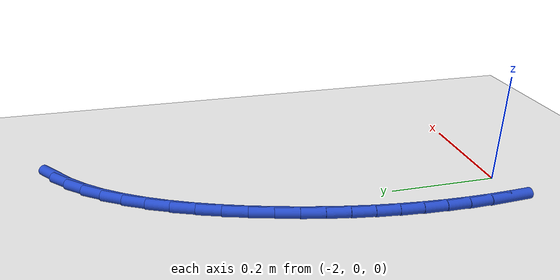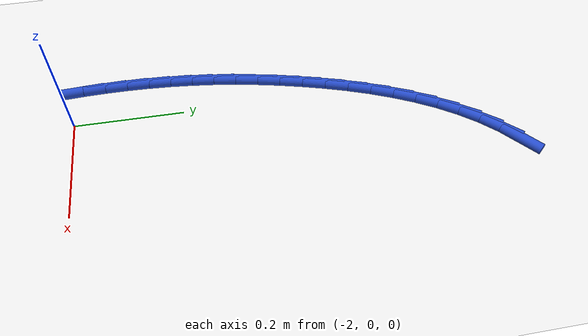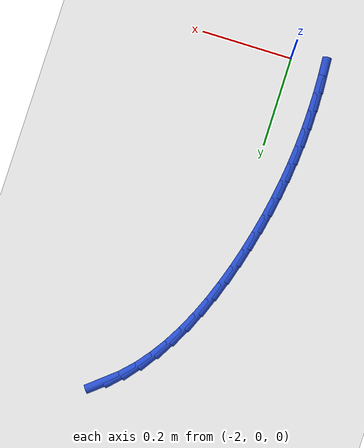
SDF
<sdf version="1.6">
 <world name="default">
  <model name="ground_plane">
   <static>1</static>
   <link name="link">
    <collision name="collision">
     <geometry><plane><normal>0 0 1</normal><size>100 100</size></plane></geometry>
     <surface><friction><ode><mu>100</mu><mu2>50</mu2></ode></friction></surface>
    </collision>
    <visual name="visual">
     <cast_shadows>0</cast_shadows>
     <geometry><plane><normal>0 0 1</normal><size>100 100</size></plane></geometry>
     <material>
      <script><uri>file://media/materials/scripts/gazebo.material</uri><name>Gazebo/WhiteGlow</name></script>
     </material>
    </visual>
   </link>
  </model>
  <model name="line">
   <link name="link_60">
    <pose>-1.8231667165648455 0.7911492960577742 0.01 0 1.57 0.6890913459508331</pose>
    <collision name="collision">
     <geometry><cylinder><radius>0.01</radius><length>0.08</length></cylinder></geometry>
    </collision>
    <visual name="visual">
     <material>
      <script><name>Gazebo/Blue</name><uri>file://media/materials/scripts/gazebo.material</uri></script>
     </material>
     <geometry><cylinder><radius>0.01</radius><length>0.08</length></cylinder></geometry>
    </visual>
   </link>
   <link name="link_61">
    <pose>-1.853980158669267 0.7657648854449245 0.01 0 1.57 0.7975878850034774</pose>
    <collision name="collision">
     <geometry><cylinder><radius>0.01</radius><length>0.08</length></cylinder></geometry>
    </collision>
    <visual name="visual">
     <material>
      <script><name>Gazebo/Blue</name><uri>file://media/materials/scripts/gazebo.material</uri></script>
     </material>
     <geometry><cylinder><radius>0.01</radius><length>0.08</length></cylinder></geometry>
    </visual>
   </link>
   <link name="link_62">
    <pose>-1.882228727913692 0.7368190983863492 0.01 0 1.57 0.893323602333009</pose>
    <collision name="collision">
     <geometry><cylinder><radius>0.01</radius><length>0.08</length></cylinder></geometry>
    </collision>
    <visual name="visual">
     <material>
      <script><name>Gazebo/Blue</name><uri>file://media/materials/scripts/gazebo.material</uri></script>
     </material>
     <geometry><cylinder><radius>0.01</radius><length>0.08</length></cylinder></geometry>
    </visual>
   </link>
   <link name="link_63">
    <pose>-1.908036956387296 0.7047388609808019 0.01 0 1.57 0.9768331360070919</pose>
    <collision name="collision">
     <geometry><cylinder><radius>0.01</radius><length>0.08</length></cylinder></geometry>
    </collision>
    <visual name="visual">
     <material>
      <script><name>Gazebo/Blue</name><uri>file://media/materials/scripts/gazebo.material</uri></script>
     </material>
     <geometry><cylinder><radius>0.01</radius><length>0.08</length></cylinder></geometry>
    </visual>
   </link>
   <link name="link_64">
    <pose>-1.9315294298668784 0.6699512172193091 0.01 0 1.57 1.0492215812812835</pose>
    <collision name="collision">
     <geometry><cylinder><radius>0.01</radius><length>0.08</length></cylinder></geometry>
    </collision>
    <visual name="visual">
     <material>
      <script><name>Gazebo/Blue</name><uri>file://media/materials/scripts/gazebo.material</uri></script>
     </material>
     <geometry><cylinder><radius>0.01</radius><length>0.08</length></cylinder></geometry>
    </visual>
   </link>
   <link name="link_65">
    <pose>-1.9528307341292395 0.6328832110928961 0.01 0 1.57 1.1118035574701328</pose>
    <collision name="collision">
     <geometry><cylinder><radius>0.01</radius><length>0.08</length></cylinder></geometry>
    </collision>
    <visual name="visual">
     <material>
      <script><name>Gazebo/Blue</name><uri>file://media/materials/scripts/gazebo.material</uri></script>
     </material>
     <geometry><cylinder><radius>0.01</radius><length>0.08</length></cylinder></geometry>
    </visual>
   </link>
   <link name="link_66">
    <pose>-1.9720654549511787 0.5939618865925883 0.01 0 1.57 1.1658857991225664</pose>
    <collision name="collision">
     <geometry><cylinder><radius>0.01</radius><length>0.08</length></cylinder></geometry>
    </collision>
    <visual name="visual">
     <material>
      <script><name>Gazebo/Blue</name><uri>file://media/materials/scripts/gazebo.material</uri></script>
     </material>
     <geometry><cylinder><radius>0.01</radius><length>0.08</length></cylinder></geometry>
    </visual>
   </link>
   <link name="link_67">
    <pose>-1.9893581781094956 0.5536142877094125 0.01 0 1.57 1.2126566142738422</pose>
    <collision name="collision">
     <geometry><cylinder><radius>0.01</radius><length>0.08</length></cylinder></geometry>
    </collision>
    <visual name="visual">
     <material>
      <script><name>Gazebo/Blue</name><uri>file://media/materials/scripts/gazebo.material</uri></script>
     </material>
     <geometry><cylinder><radius>0.01</radius><length>0.08</length></cylinder></geometry>
    </visual>
   </link>
   <link name="link_68">
    <pose>-2.004833489380991 0.5122674584343934 0.01 0 1.57 1.2531417944073582</pose>
    <collision name="collision">
     <geometry><cylinder><radius>0.01</radius><length>0.08</length></cylinder></geometry>
    </collision>
    <visual name="visual">
     <material>
      <script><name>Gazebo/Blue</name><uri>file://media/materials/scripts/gazebo.material</uri></script>
     </material>
     <geometry><cylinder><radius>0.01</radius><length>0.08</length></cylinder></geometry>
    </visual>
   </link>
   <link name="link_69">
    <pose>-2.0186159745424628 0.47034844275855753 0.01 0 1.57 1.2881959919582362</pose>
    <collision name="collision">
     <geometry><cylinder><radius>0.01</radius><length>0.08</length></cylinder></geometry>
    </collision>
    <visual name="visual">
     <material>
      <script><name>Gazebo/Blue</name><uri>file://media/materials/scripts/gazebo.material</uri></script>
     </material>
     <geometry><cylinder><radius>0.01</radius><length>0.08</length></cylinder></geometry>
    </visual>
   </link>
   <link name="link_70">
    <pose>-2.0308302193707117 0.4282842846729304 0.01 0 1.57 1.318961845787762</pose>
    <collision name="collision">
     <geometry><cylinder><radius>0.01</radius><length>0.08</length></cylinder></geometry>
    </collision>
    <visual name="visual">
     <material>
      <script><name>Gazebo/Blue</name><uri>file://media/materials/scripts/gazebo.material</uri></script>
     </material>
     <geometry><cylinder><radius>0.01</radius><length>0.08</length></cylinder></geometry>
    </visual>
   </link>
   <link name="link_71">
    <pose>-2.0415916009582786 0.3864595272017528 0.01 0 1.57 1.3491596279833953</pose>
    <collision name="collision">
     <geometry><cylinder><radius>0.01</radius><length>0.08</length></cylinder></geometry>
    </collision>
    <visual name="visual">
     <material>
      <script><name>Gazebo/Blue</name><uri>file://media/materials/scripts/gazebo.material</uri></script>
     </material>
     <geometry><cylinder><radius>0.01</radius><length>0.08</length></cylinder></geometry>
    </visual>
   </link>
   <link name="link_72">
    <pose>-2.0509469859283183 0.3449425160601024 0.01 0 1.57 1.3801950970127195</pose>
    <collision name="collision">
     <geometry><cylinder><radius>0.01</radius><length>0.08</length></cylinder></geometry>
    </collision>
    <visual name="visual">
     <material>
      <script><name>Gazebo/Blue</name><uri>file://media/materials/scripts/gazebo.material</uri></script>
     </material>
     <geometry><cylinder><radius>0.01</radius><length>0.08</length></cylinder></geometry>
    </visual>
   </link>
   <link name="link_73">
    <pose>-2.0589123563312772 0.3036590549709482 0.01 0 1.57 1.4118750400422657</pose>
    <collision name="collision">
     <geometry><cylinder><radius>0.01</radius><length>0.08</length></cylinder></geometry>
    </collision>
    <visual name="visual">
     <material>
      <script><name>Gazebo/Blue</name><uri>file://media/materials/scripts/gazebo.material</uri></script>
     </material>
     <geometry><cylinder><radius>0.01</radius><length>0.08</length></cylinder></geometry>
    </visual>
   </link>
   <link name="link_74">
    <pose>-2.065503544680629 0.2625342574972323 0.01 0 1.57 1.443977949198405</pose>
    <collision name="collision">
     <geometry><cylinder><radius>0.01</radius><length>0.08</length></cylinder></geometry>
    </collision>
    <visual name="visual">
     <material>
      <script><name>Gazebo/Blue</name><uri>file://media/materials/scripts/gazebo.material</uri></script>
     </material>
     <geometry><cylinder><radius>0.01</radius><length>0.08</length></cylinder></geometry>
    </visual>
   </link>
   <link name="link_75">
    <pose>-2.070736383489848 0.22149323720189537 0.01 0 1.57 1.4762673007500422</pose>
    <collision name="collision">
     <geometry><cylinder><radius>0.01</radius><length>0.08</length></cylinder></geometry>
    </collision>
    <visual name="visual">
     <material>
      <script><name>Gazebo/Blue</name><uri>file://media/materials/scripts/gazebo.material</uri></script>
     </material>
     <geometry><cylinder><radius>0.01</radius><length>0.08</length></cylinder></geometry>
    </visual>
   </link>
   <link name="link_76">
    <pose>-2.0746267052724097 0.18046110764787895 0.01 0 1.57 1.5084467003666089</pose>
    <collision name="collision">
     <geometry><cylinder><radius>0.01</radius><length>0.08</length></cylinder></geometry>
    </collision>
    <visual name="visual">
     <material>
      <script><name>Gazebo/Blue</name><uri>file://media/materials/scripts/gazebo.material</uri></script>
     </material>
     <geometry><cylinder><radius>0.01</radius><length>0.08</length></cylinder></geometry>
    </visual>
   </link>
   <link name="link_77">
    <pose>-2.077192117504785 0.13936884789929915 0.01 0 1.57 1.5398877108221358</pose>
    <collision name="collision">
     <geometry><cylinder><radius>0.01</radius><length>0.08</length></cylinder></geometry>
    </collision>
    <visual name="visual">
     <material>
      <script><name>Gazebo/Blue</name><uri>file://media/materials/scripts/gazebo.material</uri></script>
     </material>
     <geometry><cylinder><radius>0.01</radius><length>0.08</length></cylinder></geometry>
    </visual>
   </link>
   <link name="link_78">
    <pose>-2.0784651005523838 0.09819658562094903 0.01 0 1.57 1.5703004252039297</pose>
    <collision name="collision">
     <geometry><cylinder><radius>0.01</radius><length>0.08</length></cylinder></geometry>
    </collision>
    <visual name="visual">
     <material>
      <script><name>Gazebo/Blue</name><uri>file://media/materials/scripts/gazebo.material</uri></script>
     </material>
     <geometry><cylinder><radius>0.01</radius><length>0.08</length></cylinder></geometry>
    </visual>
   </link>
   <link name="link_79">
    <pose>-2.078485555312175 0.0569489701925229 0.01 0 1.57 -1.5419521567926375</pose>
    <collision name="collision">
     <geometry><cylinder><radius>0.01</radius><length>0.08</length></cylinder></geometry>
    </collision>
    <visual name="visual">
     <material>
      <script><name>Gazebo/Blue</name><uri>file://media/materials/scripts/gazebo.material</uri></script>
     </material>
     <geometry><cylinder><radius>0.01</radius><length>0.08</length></cylinder></geometry>
    </visual>
   </link>
   <link name="link_80">
    <pose>-2.077293437264896 0.015630831369964723 0.01 0 1.57 -1.5137168703543495</pose>
    <collision name="collision">
     <geometry><cylinder><radius>0.01</radius><length>0.08</length></cylinder></geometry>
    </collision>
    <visual name="visual">
     <material>
      <script><name>Gazebo/Blue</name><uri>file://media/materials/scripts/gazebo.material</uri></script>
     </material>
     <geometry><cylinder><radius>0.01</radius><length>0.08</length></cylinder></geometry>
    </visual>
   </link>
  </model>
 </world>
</sdf>
